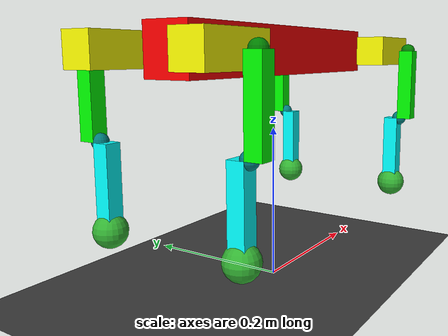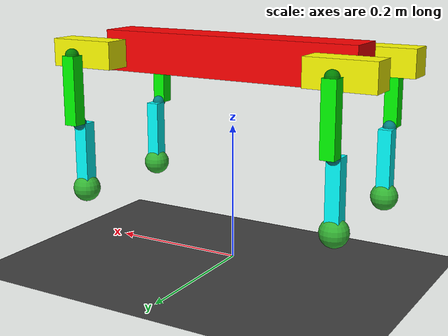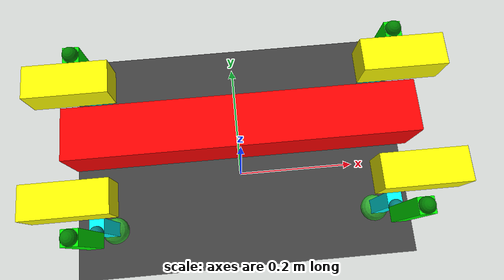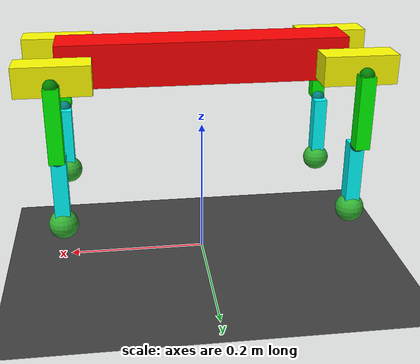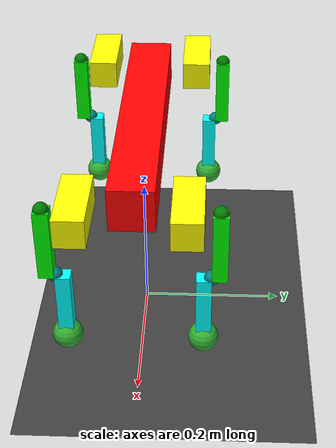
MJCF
<?xml version="1.0" encoding="UTF-8" ?>
<mujoco model="snake_scene">
    <include file="dog.xml" />
    <statistic center="1 -0.8 1.1"
               extent=".3" />
    <visual>
        <headlight diffuse="0.6 0.6 0.6"
                   ambient="0.1 0.1 0.1"
                   specular="0.9 0.9 0.9" />
        <rgba haze="0.15 0.25 0.35 1" />
        <global azimuth="140"
                elevation="-20"
                fovy="100" />
    </visual>
    <asset>
        <texture builtin="checker"
                 height="512"
                 name="plane"
                 rgb1="0.2 0.2 0.2"
                 rgb2="0.3 0.3 0.3"
                 type="2d"
                 width="512" />
        <texture builtin="gradient"
                 height="128"
                 rgb1="0.4 0.6 0.8"
                 rgb2="0 0 0"
                 type="skybox"
                 width="128" />
        <texture type="skybox"
                 builtin="gradient"
                 rgb1="1 1 1"
                 rgb2="1 1 1"
                 width="800"
                 height="800" />
        <texture type="2d"
                 name="groundplane"
                 builtin="checker"
                 mark="edge"
                 rgb1="1 1 1"
                 rgb2="1 1 1"
                 markrgb="0 0 0"
                 width="300"
                 height="300" />
        <material name="plane"
                  reflectance="0.000000"
                  texrepeat="1 1"
                  texture="plane"
                  texuniform="true" />
    </asset>
    <worldbody>
        <geom conaffinity="1"
              contype="1"
              condim="3"
              friction="1 .1 .1"
              name="floor"
              pos="0 0 0"
              size="40 40 0.125"
              type="plane"
              material="plane"
              rgba="0.5 0.5 0.5 1.0" />
    </worldbody>
</mujoco>

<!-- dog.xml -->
<mujoco model="snake">
    <compiler angle="degree" />
    <option timestep="0.001"
            gravity="0 0 -9.81" />
    <default>
        <equality solref="0.005 1" />
        <geom type="box"
              size="0.05 0.02 0.02"
              density="500"
              rgba="0.2 0.7 0.2 1" />
        <joint limited="true"
               range="-300 300"
               damping="0.2"
               stiffness="5" />
        <motor ctrllimited="true"
               ctrlrange="-3 3" />
    </default>
    <worldbody>
        <!-- Segment 0 (root body) -->
        <body name="body"
              pos="0 0 0.3">
            <freejoint name="root_free" />
            <geom name="body_geom"
                  type="box"
                  size="0.2 0.03 0.03"
                  pos="0 0 0"
                  rgba="1 0 0 1" />
            <!-- Left Front Shoulder -->
            <body name="shoulder_lf"
                  pos="-0.2 -0.07 0">
                <geom name="shoulder_lf_geom"
                      type="box"
                      size="0.05 0.02 0.02"
                      pos="0 0 0"
                      rgba="1 1 0 1" />
                <!-- Left Front Upper Leg -->
                <body name="upper_leg_lf"
                      pos="0 -0.04 -0.05">
                    <joint name="shoulder_j_lf"
                           type="hinge"
                           axis="0 1 0"
                           pos="0 0 0.05" />
                    <site name="shoulder_joint_lf"
                          pos="0 0 0.05"
                          size="0.01"
                          rgba="0 0.5 0 1" />
                    <geom name="upper_leg_lf_geom"
                          type="box"
                          size="0.01 0.01 0.05"
                          pos="0 0 0"
                          rgba="0 1 0 1" />
                    <!-- Left Front Lower Leg -->
                    <body name="lower_leg_lf"
                          pos="0 0.02 -0.10">
                        <joint name="knee_lf"
                               type="hinge"
                               axis="0 1 0"
                               pos="0 -0.01 0.05" />
                        <site name="knee_joint_lf"
                              pos="0 -0.01 0.05"
                              size="0.01"
                              rgba="0 0.5 0.5 1" />
                        <geom name="lower_leg_lf_geom"
                              type="box"
                              size="0.01 0.01 0.05"
                              pos="0 0 0"
                              rgba="0 1 1 1" />
                        <!-- Left front Foot -->
                        <body name="foot_lf"
                              pos="0 0 -0.05">
                            <joint name="ankle_lf"
                                   type="hinge"
                                   axis="0 1 0"
                                   pos="0.0 0 0" />
                            <geom name="foot_lf_geom"
                                  type="sphere"
                                  size="0.02"
                                  pos="0 0 0" />
                        </body>
                    </body>
                </body>
            </body>
            <!-- Right Front Shoulder -->
            <body name="shoulder_rf"
                  pos="-0.2 0.07 0">
                <geom name="shoulder_rf_geom"
                      type="box"
                      size="0.05 0.02 0.02"
                      pos="0 0 0"
                      rgba="1 1 0 1" />
                <!-- Right Front Upper Leg -->
                <body name="upper_leg_rf"
                      pos="0 0.04 -0.05">
                    <joint name="shoulder_j_rf"
                           type="hinge"
                           axis="0 1 0"
                           pos="0 0 0.05" />
                    <site name="shoulder_joint_rf"
                          pos="0 0 0.05"
                          size="0.01"
                          rgba="0 0.5 0 1" />
                    <geom name="upper_leg_rf_geom"
                          type="box"
                          size="0.01 0.01 0.05"
                          pos="0 0 0"
                          rgba="0 1 0 1" />
                    <!-- Right Front Lower Leg -->
                    <body name="lower_leg_rf"
                          pos="0 -0.02 -0.10">
                        <joint name="knee_rf"
                               type="hinge"
                               axis="0 1 0"
                               pos="0 0.01 0.05" />
                        <site name="knee_joint_rf"
                              pos="0 0.01 0.05"
                              size="0.01"
                              rgba="0 0.5 0.5 1" />
                        <geom name="lower_leg_rf_geom"
                              type="box"
                              size="0.01 0.01 0.05"
                              pos="0 0 0"
                              rgba="0 1 1 1" />
                        <!-- Right Front Foot -->
                        <body name="foot_rf"
                              pos="0 0 -0.05">
                            <joint name="ankle_rf"
                                   type="hinge"
                                   axis="0 1 0"
                                   pos="0.0 0 0" />
                            <geom name="foot_rf_geom"
                                  type="sphere"
                                  size="0.02"
                                  pos="0 0 0" />
                        </body>
                    </body>
                </body>
            </body>
            <!-- Right Back Shoulder -->
            <body name="shoulder_lb"
                  pos="0.2 -0.07 0">
                <geom name="shoulder_lb_geom"
                      type="box"
                      size="0.05 0.02 0.02"
                      pos="0 0 0"
                      rgba="1 1 0 1" />
                <!-- Right Back Upper Leg -->
                <body name="upper_leg_lb"
                      pos="0 -0.04 -0.05">
                    <joint name="shoulder_j_lb"
                           type="hinge"
                           axis="0 1 0"
                           pos="0 0 0.05" />
                    <site name="shoulder_joint_lb"
                          pos="0 0 0.05"
                          size="0.01"
                          rgba="0 0.5 0 1" />
                    <geom name="upper_leg_lb_geom"
                          type="box"
                          size="0.01 0.01 0.05"
                          pos="0 0 0"
                          rgba="0 1 0 1" />
                    <!-- Right Back Lower Leg -->
                    <body name="lower_leg_lb"
                          pos="0 0.02 -0.10">
                        <joint name="knee_lb"
                               type="hinge"
                               axis="0 1 0"
                               pos="0 -0.01 0.05" />
                        <site name="knee_joint_lb"
                              pos="0 -0.01 0.05"
                              size="0.01"
                              rgba="0 0.5 0.5 1" />
                        <geom name="lower_leg_lb_geom"
                              type="box"
                              size="0.01 0.01 0.05"
                              pos="0 0 0"
                              rgba="0 1 1 1" />
                        <!-- Right Back Foot -->
                        <body name="foot_lb"
                              pos="0 0 -0.05">
                            <joint name="ankle_lb"
                                   type="hinge"
                                   axis="0 1 0"
                                   pos="0.0 0 0" />
                            <geom name="foot_lb_geom"
                                  type="sphere"
                                  size="0.02"
                                  pos="0 0 0" />
                        </body>
                    </body>
                </body>
            </body>
            <!-- Right Back Shoulder -->
            <body name="shoulder_rb"
                  pos="0.2 0.07 0">
                <geom name="shoulder_rb_geom"
                      type="box"
                      size="0.05 0.02 0.02"
                      pos="0 0 0"
                      rgba="1 1 0 1" />
                <!-- Right Back Upper Leg -->
                <body name="upper_leg_rb"
                      pos="0 0.04 -0.05">
                    <joint name="shoulder_j_rb"
                           type="hinge"
                           axis="0 1 0"
                           pos="0 0 0.05" />
                    <site name="shoulder_joint_rb"
                          pos="0 0 0.05"
                          size="0.01"
                          rgba="0 0.5 0 1" />
                    <geom name="upper_leg_rb_geom"
                          type="box"
                          size="0.01 0.01 0.05"
                          pos="0 0 0"
                          rgba="0 1 0 1" />
                    <!-- Right Back Lower Leg -->
                    <body name="lower_leg_rb"
                          pos="0 -0.02 -0.10">
                        <joint name="knee_rb"
                               type="hinge"
                               axis="0 1 0"
                               pos="0 0.01 0.05" />
                        <site name="knee_joint_rb"
                              pos="0 0.01 0.05"
                              size="0.01"
                              rgba="0 0.5 0.5 1" />
                        <geom name="lower_leg_rb_geom"
                              type="box"
                              size="0.01 0.01 0.05"
                              pos="0 0 0"
                              rgba="0 1 1 1" />
                        <!-- Right Back Foot -->
                        <body name="foot_rb"
                              pos="0 0 -0.05">
                            <joint name="ankle_rb"
                                   type="hinge"
                                   axis="0 1 0"
                                   pos="0.0 0 0" />
                            <geom name="foot_rb_geom"
                                  type="sphere"
                                  size="0.02"
                                  pos="0 0 0" />
                        </body>
                    </body>
                </body>
            </body>
        </body>
    </worldbody>
    <actuator>
        <!-- Left Front -->
        <motor name="shoulder_motor_lf"
               joint="shoulder_j_lf"
               forcerange="0 20" />
        <motor name="knee_motor_lf"
               joint="knee_lf"
               forcerange="0 20" />
        <motor name="ankle_motor_lf"
               joint="ankle_lf"
               forcerange="0 20" />
        <!-- Right Front -->
        <motor name="shoulder_motor_rf"
               joint="shoulder_j_rf"
               forcerange="0 20" />
        <motor name="knee_motor_rf"
               joint="knee_rf"
               forcerange="0 20" />
        <motor name="ankle_motor_rf"
               joint="ankle_rf"
               forcerange="0 20" />
        <!-- Left Back -->
        <motor name="shoulder_motor_lb"
               joint="shoulder_j_lb"
               forcerange="0 20" />
        <motor name="knee_motor_lb"
               joint="knee_lb"
               forcerange="0 20" />
        <motor name="ankle_motor_lb"
               joint="ankle_lb"
               forcerange="0 20" />
        <!-- Right Back -->
        <motor name="shoulder_motor_rb"
               joint="shoulder_j_rb"
               forcerange="0 20" />
        <motor name="knee_motor_rb"
               joint="knee_rb"
               forcerange="0 20" />
        <motor name="ankle_motor_rb"
               joint="ankle_rb"
               forcerange="0 20" />
    </actuator>
    <sensor>
        <jointpos joint="shoulder_j_lf" />
        <jointpos joint="knee_lf" />
        <jointpos joint="ankle_lf" />
    </sensor>
</mujoco>
